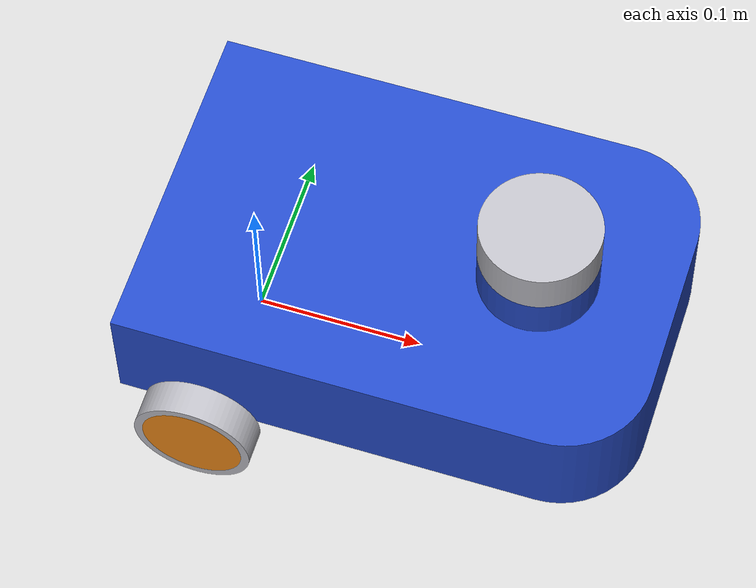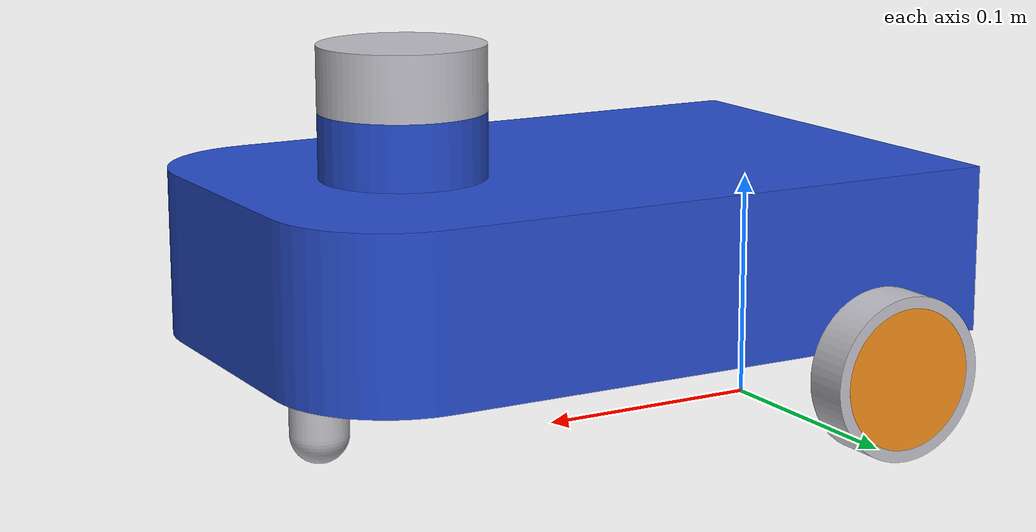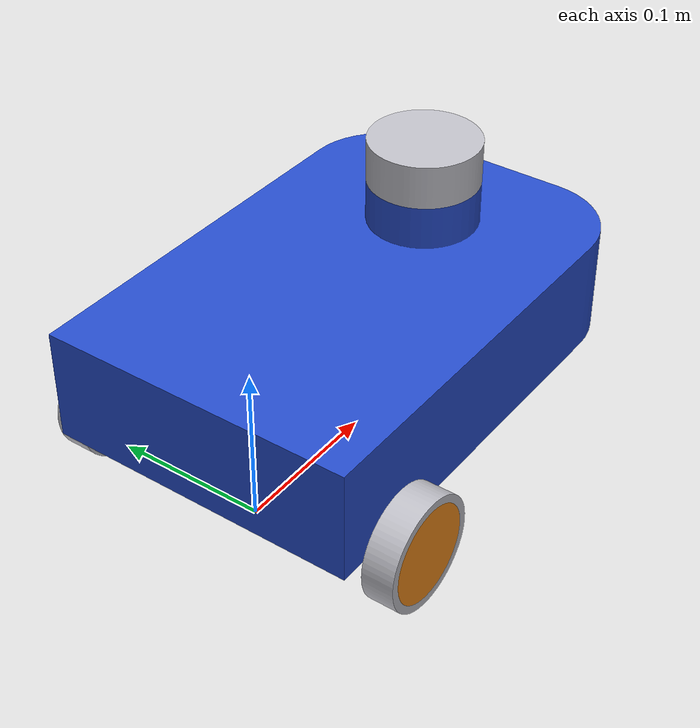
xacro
<?xml version="1.0" ?>
<robot name="diff_robot" xmlns:xacro="http://www.ros.org/wiki/xacro">

<xacro:include filename="$(find robot2_description)/urdf/materials.xacro" />

<xacro:include filename="$(find robot2_description)/gazebo/robot_gazebo_material.gazebo" />
<xacro:include filename="$(find robot2_description)/gazebo/robot_gazebo_plugin.gazebo" />
<xacro:include filename="$(find robot2_description)/gazebo/robot2.gazebo" />

<link name="base_link">
  <inertial>
    <origin xyz="-0.0009460266043133479 1.694673559202162e-17 0.08166681729348524" rpy="0 0 0"/>
    <mass value="5.550932388137462"/>
    <inertia ixx="0.094547" iyy="0.199144" izz="0.269303" ixy="-0.0" iyz="0.0" ixz="-0.002449"/>
  </inertial>
  <visual>
    <origin xyz="0.1 0 0" rpy="0 0 0"/>
    <geometry>
      <mesh filename="package://robot2_description/meshes/base_link.stl" scale="0.001 0.001 0.001"/>
    </geometry>
    <material name="blue"/>
  </visual>
  <collision>
    <origin xyz="0.1 0 0" rpy="0 0 0"/>
    <geometry>
      <mesh filename="package://robot2_description/meshes/base_link.stl" scale="0.001 0.001 0.001"/>
    </geometry>
  </collision>
</link>

<link name="lidar_1">
  <inertial>
    <origin xyz="0.0 0.0 0.013750000000000012" rpy="0 0 0"/>
    <mass value="0.8307843597647783"/>
    <inertia ixx="0.000307" iyy="0.000307" izz="0.000509" ixy="0.0" iyz="-0.0" ixz="-0.0"/>
  </inertial>
  <visual>
    <origin xyz="-0.07 -0.0 -0.1435" rpy="0 0 0"/>
    <geometry>
      <mesh filename="package://robot2_description/meshes/lidar_1.stl" scale="0.001 0.001 0.001"/>
    </geometry>
    <material name="silver"/>
  </visual>
  <collision>
    <origin xyz="-0.07 -0.0 -0.1435" rpy="0 0 0"/>
    <geometry>
      <mesh filename="package://robot2_description/meshes/lidar_1.stl" scale="0.001 0.001 0.001"/>
    </geometry>
  </collision>
</link>

<link name="caster_wheel_1">
  <inertial>
    <origin xyz="1.3877787807814457e-17 1.5790972091241895e-18 -0.02301136363636362" rpy="0 0 0"/>
    <mass value="0.02384828798232877"/>
    <inertia ixx="5e-06" iyy="5e-06" izz="2e-06" ixy="-0.0" iyz="0.0" ixz="-0.0"/>
  </inertial>
  <visual>
    <origin xyz="-0.11 -0.0 -0.05" rpy="0 0 0"/>
    <geometry>
      <mesh filename="package://robot2_description/meshes/caster_wheel_1.stl" scale="0.001 0.001 0.001"/>
    </geometry>
    <material name="silver"/>
  </visual>
  <collision>
    <origin xyz="-0.11 -0.0 -0.05" rpy="0 0 0"/>
    <geometry>
      <mesh filename="package://robot2_description/meshes/caster_wheel_1.stl" scale="0.001 0.001 0.001"/>
    </geometry>
  </collision>
</link>

<link name="left_wheel_1">
  <inertial>
    <origin xyz="-1.3877787807814457e-17 -0.009999999999999981 1.3877787807814457e-17" rpy="0 0 0"/>
    <mass value="0.01899092759095037"/>
    <inertia ixx="1.1e-05" iyy="2e-05" izz="1.1e-05" ixy="-0.0" iyz="0.0" ixz="-0.0"/>
  </inertial>
  <visual>
    <origin xyz="0.1 -0.12 -0.035" rpy="0 0 0"/>
    <geometry>
      <mesh filename="package://robot2_description/meshes/left_wheel__1.stl" scale="0.001 0.001 0.001"/>
    </geometry>
    <material name="silver"/>
  </visual>
  <collision>
    <origin xyz="0.1 -0.12 -0.035" rpy="0 0 0"/>
    <geometry>
      <mesh filename="package://robot2_description/meshes/left_wheel__1.stl" scale="0.001 0.001 0.001"/>
    </geometry>
  </collision>
</link>

<link name="right_wheel_1">
  <inertial>
    <origin xyz="2.7755575615628914e-17 0.010000000000000009 -1.3877787807814457e-17" rpy="0 0 0"/>
    <mass value="0.018990927590950325"/>
    <inertia ixx="1.1e-05" iyy="2e-05" izz="1.1e-05" ixy="0.0" iyz="0.0" ixz="0.0"/>
  </inertial>
  <visual>
    <origin xyz="0.1 0.12 -0.035" rpy="0 0 0"/>
    <geometry>
      <mesh filename="package://robot2_description/meshes/right_wheel_1.stl" scale="0.001 0.001 0.001"/>
    </geometry>
    <material name="silver"/>
  </visual>
  <collision>
    <origin xyz="0.1 0.12 -0.035" rpy="0 0 0"/>
    <geometry>
      <mesh filename="package://robot2_description/meshes/right_wheel_1.stl" scale="0.001 0.001 0.001"/>
    </geometry>
  </collision>
</link>

<link name="left_motor_1">
  <inertial>
    <origin xyz="1.2045919817182948e-14 0.0148076923076923 -6.938893903907228e-18" rpy="0 0 0"/>
    <mass value="0.0740875905009856"/>
    <inertia ixx="1.9e-05" iyy="3.3e-05" izz="1.9e-05" ixy="0.0" iyz="-0.0" ixz="-0.0"/>
  </inertial>
  <visual>
    <origin xyz="0.1 -0.095 -0.035" rpy="0 0 0"/>
    <geometry>
      <mesh filename="package://robot2_description/meshes/left_motor_1.stl" scale="0.001 0.001 0.001"/>
    </geometry>
    <material name="orange"/>
  </visual>
  <collision>
    <origin xyz="0.1 -0.095 -0.035" rpy="0 0 0"/>
    <geometry>
      <mesh filename="package://robot2_description/meshes/left_motor_1.stl" scale="0.001 0.001 0.001"/>
    </geometry>
  </collision>
</link>

<link name="right_motor_1">
  <inertial>
    <origin xyz="4.826694599557868e-14 -0.0148076923076923 0.0" rpy="0 0 0"/>
    <mass value="0.07408759050098533"/>
    <inertia ixx="1.9e-05" iyy="3.3e-05" izz="1.9e-05" ixy="0.0" iyz="0.0" ixz="-0.0"/>
  </inertial>
  <visual>
    <origin xyz="0.1 0.095 -0.035" rpy="0 0 0"/>
    <geometry>
      <mesh filename="package://robot2_description/meshes/right_motor_1.stl" scale="0.001 0.001 0.001"/>
    </geometry>
    <material name="orange"/>
  </visual>
  <collision>
    <origin xyz="0.1 0.095 -0.035" rpy="0 0 0"/>
    <geometry>
      <mesh filename="package://robot2_description/meshes/right_motor_1.stl" scale="0.001 0.001 0.001"/>
    </geometry>
  </collision>
</link>

<joint name="to_lidar" type="fixed">
  <origin xyz="0.17 0.0 0.1435" rpy="0 0 0"/>
  <parent link="base_link"/>
  <child link="lidar_1"/>
</joint>

<joint name="to_caster_wheel" type="fixed">
  <origin xyz="0.21 0.0 0.05" rpy="0 0 0"/>
  <parent link="base_link"/>
  <child link="caster_wheel_1"/>
</joint>

<joint name="to_left_motor" type="continuous">
  <origin xyz="0.0 0.095 0.035" rpy="0 0 0"/>
  <parent link="base_link"/>
  <child link="left_motor_1"/>
  <axis xyz="0.0 1.0 0.0"/>
</joint>

<joint name="to_right_motor" type="continuous">
  <origin xyz="0.0 -0.095 0.035" rpy="0 0 0"/>
  <parent link="base_link"/>
  <child link="right_motor_1"/>
  <axis xyz="0.0 1.0 0.0"/>
</joint>

<joint name="to_left_wheel" type="fixed">
  <origin xyz="0.0 0.025 0.0" rpy="0 0 0"/>
  <parent link="left_motor_1"/>
  <child link="left_wheel_1"/>
</joint>

<joint name="to_right_wheel" type="fixed">
  <origin xyz="0.0 -0.025 0.0" rpy="0 0 0"/>
  <parent link="right_motor_1"/>
  <child link="right_wheel_1"/>
</joint>

</robot>
